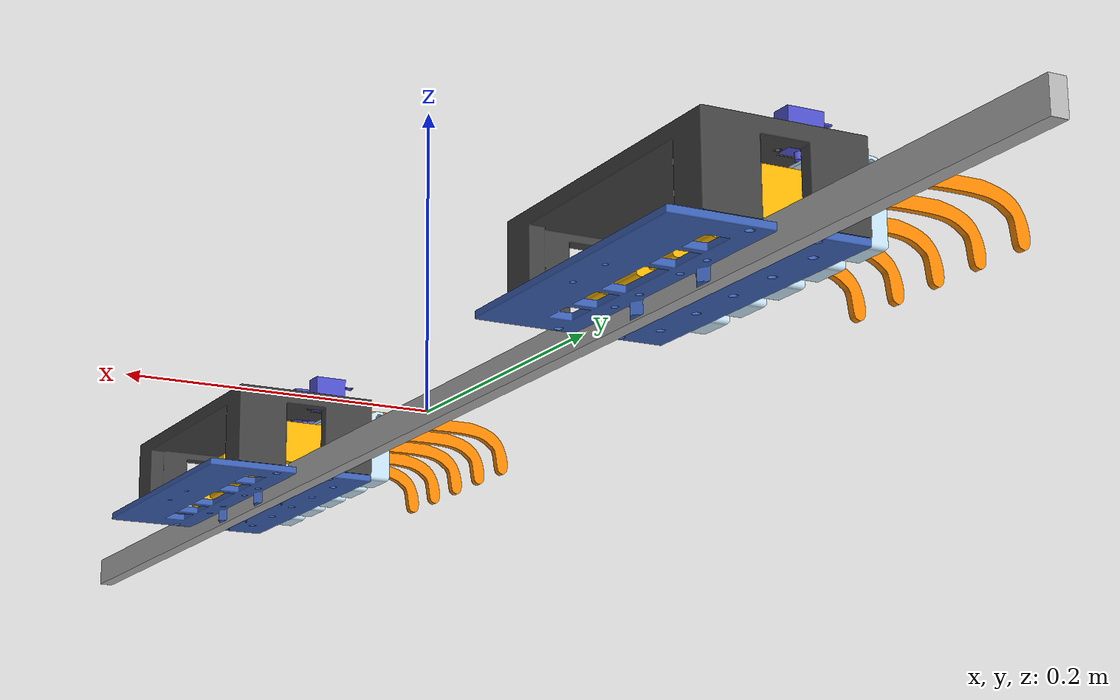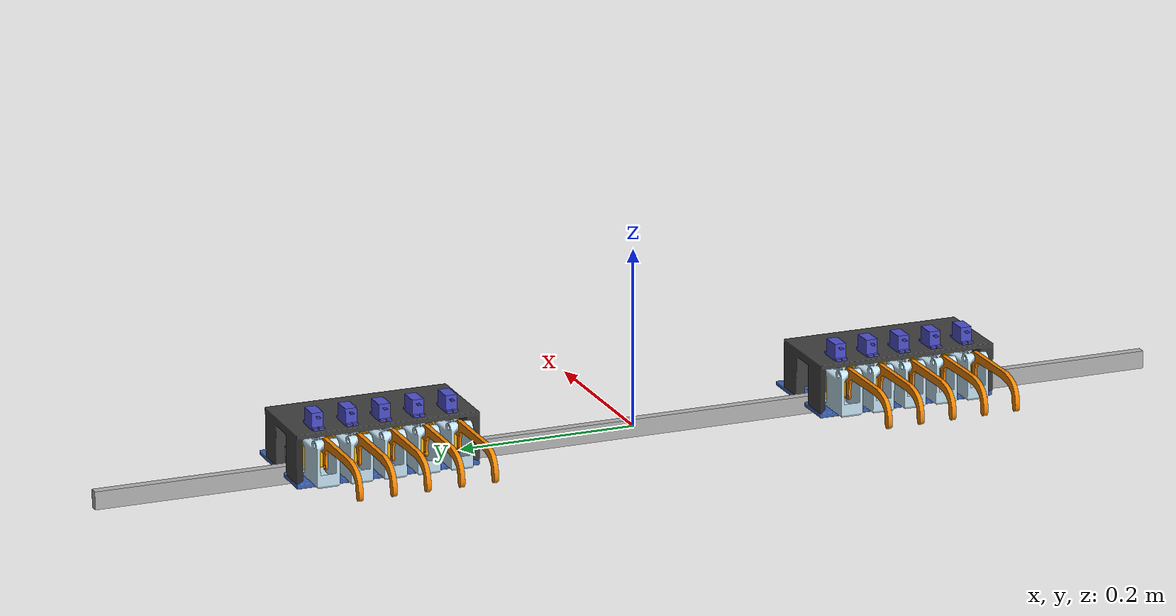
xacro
<?xml version="1.0"?>
<robot xmlns:xacro="http://www.ros.org/wiki/xacro" name="bothoven">

  <xacro:arg name="use_sim" default="false" />

  <xacro:include filename="$(find bothoven_description)/urdf/bothoven_core.xacro" />
  <xacro:include filename="$(find bothoven_description)/ros2_control/ros2_control.xacro" />

  <xacro:bothoven_ros2_control use_sim="$(arg use_sim)" />

  <xacro:if value="$(arg use_sim)">
    <gazebo>
      <plugin filename="libgz_ros2_control-system.so"
        name="gz_ros2_control::GazeboSimROS2ControlPlugin">
        <parameters>$(find bothoven_bringup)/config/controllers.yaml</parameters>
      </plugin>
    </gazebo>
  </xacro:if>
</robot>

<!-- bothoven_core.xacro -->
<robot name="bothoven"
  xmlns:xacro="http://www.ros.org/wiki/xacro">

  <xacro:include filename="$(find bothoven_description)/urdf/left_hand.xacro" />
  <xacro:include filename="$(find bothoven_description)/urdf/right_hand.xacro" />

  <xacro:property name="mesh_dir" value="file://$(find bothoven_description)/meshes" />

  <!-- dimensions -->
  <xacro:property name="rail_length" value="1.2192" />
  <xacro:property name="rail_width" value="0.05" />
  <xacro:property name="rail_height" value="0.02" />
  <xacro:property name="hand_width" value="0.4064" />

  <!-- hand origins relative to the rail center -->
  <xacro:property name="lh_start_point" value="-0.3" />
  <xacro:property name="rh_start_point" value="0.3" />

  <!-- servo joint limits -->
  <xacro:property name="servo_min" value="-0.087266462599716473902" />
  <xacro:property name="servo_max" value="0.087266462599716473902" />

  <!-- solenoid joint limits -->
  <xacro:property name="solenoid_min" value="0" />
  <xacro:property name="solenoid_max" value="0.52359877559829881566" />

  <!-- colours -->
  <material name="finger_mount_plate_material">
    <color rgba="0.231 0.380 0.706 1.0"/>
  </material>

  <material name="servo_mechanism_top_mount_material">
    <color rgba="0.250 0.250 0.250 1.0"/>
  </material>

  <material name="servo_material">
    <color rgba="0.302 0.314 0.8 1.0"/>
  </material>

  <material name="large_solenoid_material">
    <color rgba="0.980 0.714 0.004 1.0"/>
  </material>

  <material name="large_finger_solenoid_material">
    <color rgba="0.769 0.886 0.953 1.0"/>
  </material>

  <material name="finger_arm_large_material">
    <color rgba="0.973 0.529 0.004 1.0"/>
  </material>

  <material name="rail_material">
    <color rgba="0.7 0.7 0.7 1.0"/>
  </material>

  <!-- robot base -->
  <link name="base_link">
    <visual>
      <origin xyz="0 0 0" rpy="0 0 0" />
      <geometry>
        <box size="0.01 ${rail_length} ${rail_height}"/>
      </geometry>
      <material name="rail_material"/>
    </visual>
    <collision>
      <origin xyz="0 0 0" rpy="0 0 0" />
      <geometry>
        <box size="0.01 ${rail_length} ${rail_height}"/>
      </geometry>
    </collision>
    <inertial>
      <origin xyz="0 0 0" rpy="0 0 0"/>
      <mass value="10.0"/>
      <inertia ixx="0.1" ixy="0.0" ixz="0.0" iyy="0.1" iyz="0.0" izz="0.1"/>
    </inertial>
  </link>

  <!-- create hands -->
  <xacro:left_hand parent_link="base_link" rail_origin="${lh_start_point}" hand_width="${hand_width}" rail_length="${rail_length}" mesh_dir="${mesh_dir}"/>
  <xacro:right_hand parent_link="base_link" rail_origin="${rh_start_point}" hand_width="${hand_width}" rail_length="${rail_length}" mesh_dir="${mesh_dir}"/>
</robot>

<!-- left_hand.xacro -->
<robot xmlns:xacro="http://www.ros.org/wiki/xacro">
  <xacro:include filename="$(find bothoven_description)/urdf/finger.xacro" />

  <!-- left hand macro -->
  <xacro:macro name="left_hand" params="parent_link hand_width rail_origin rail_length mesh_dir">
    <xacro:property name="half_hand_width" value="${hand_width / 2}" />
    <xacro:property name="half_rail_length" value="${rail_length / 2}" />

    <joint name="lh_stepper" type="prismatic">
      <origin xyz="0 ${rail_origin} 0" rpy="0 0 ${pi}" />
      <parent link="${parent_link}" />
      <child link="lh_mount_plate" />
      <axis xyz="0 -1 0" />
      <!-- limit travel based on the rail length, accounting for hand width, relative to hand
      starting point -->
      <limit effort="100" velocity="1.0" lower="${-(half_rail_length + rail_origin)}"
        upper="${half_rail_length - rail_origin - half_hand_width}" />
    </joint>

    <!-- mount plate link -->
    <link name="lh_mount_plate">
      <visual>
        <origin xyz="0.002343270376630176427 3.5176405913106556511e-06 0.060000000000000004718"
          rpy="3.141592653589793116 -0 0" />
        <geometry>
          <mesh filename="${mesh_dir}/servo_mechanism_top_mount.stl" />
        </geometry>
        <material name="servo_mechanism_top_mount_material" />
      </visual>
      <visual>
        <origin xyz="0.0023499287608851338049 0.033803517640591265736 -0.021799999999999989525"
          rpy="1.9958838398273146999e-16 -6.5938365254384542654e-32 0" />
        <geometry>
          <mesh filename="${mesh_dir}/finger_mount_plate.stl" />
        </geometry>
        <material name="finger_mount_plate_material" />
      </visual>
      <visual>
        <origin xyz="0.045938244354197944885 -0.043846468705386110187 0.078200000000000005618"
          rpy="3.141592653589793116 -0 3.141592653589793116" />
        <geometry>
          <mesh filename="${mesh_dir}/servo.stl" />
        </geometry>
        <material name="servo_material" />
      </visual>
      <visual>
        <origin xyz="0.045938244354197944885 -0.0063464687053861098404 0.078200000000000005618"
          rpy="3.141592653589793116 -0 3.141592653589793116" />
        <geometry>
          <mesh filename="${mesh_dir}/servo.stl" />
        </geometry>
        <material name="servo_material" />
      </visual>
      <visual>
        <origin xyz="0.045938244354197951824 0.068653531294613892588 0.078200000000000005618"
          rpy="3.141592653589793116 -0 3.141592653589793116" />
        <geometry>
          <mesh filename="${mesh_dir}/servo.stl" />
        </geometry>
        <material name="servo_material" />
      </visual>
      <visual>
        <origin xyz="0.045938244354197944885 0.031153531294613880098 0.078200000000000005618"
          rpy="3.141592653589793116 -0 3.141592653589793116" />
        <geometry>
          <mesh filename="${mesh_dir}/servo.stl" />
        </geometry>
        <material name="servo_material" />
      </visual>
      <visual>
        <origin xyz="0.045938244354197944885 -0.081346468705386101861 0.078200000000000005618"
          rpy="3.141592653589793116 -0 3.141592653589793116" />
        <geometry>
          <mesh filename="${mesh_dir}/servo.stl" />
        </geometry>
        <material name="servo_material" />
      </visual>
      <inertial>
        <origin xyz="-0.0061380588689649677459 3.5176405912781151864e-06 0.0021762323764684364524"
          rpy="0 0 0" />
        <mass value="0.1425418914513462143" />
        <inertia ixx="0.00049040499142920430681" ixy="-4.2521531645534643096e-08"
          ixz="3.8022632172476792943e-07" iyy="0.00017998199019841947194"
          iyz="-9.7638013247875626937e-20" izz="0.00066917886277955795742" />
      </inertial>
    </link>

    <!-- create 5 fingers, where 1 is rightmost (thumb) and 5 is leftmost (pinky)-->
    <xacro:finger prefix="lh" parent_link="lh_mount_plate" finger_num="1"
      xyz_mount="0.035323819514354745652 -0.074996482359408825347 0.0050000000000000044409"
      rpy_mount="3.141592653589793116 -0 -1.570796326794896558" mesh_dir="${mesh_dir}" />

    <xacro:finger prefix="lh" parent_link="lh_mount_plate" finger_num="2"
      xyz_mount="0.035323819514354745652 -0.037496482359408805918 0.0050000000000000087777"
      rpy_mount="3.141592653589793116 -0 -1.570796326794896558" mesh_dir="${mesh_dir}" />

    <xacro:finger prefix="lh" parent_link="lh_mount_plate" finger_num="3"
      xyz_mount="0.035323819514354745652 3.5176405912273889243e-06 0.0050000000000000044409"
      rpy_mount="3.141592653589793116 -0 -1.570796326794896558" mesh_dir="${mesh_dir}" />

    <xacro:finger prefix="lh" parent_link="lh_mount_plate" finger_num="4"
      xyz_mount="0.035323819514354745652 0.037503517640591260696 0.0050000000000000044409"
      rpy_mount="3.141592653589793116 -0 -1.570796326794896558" mesh_dir="${mesh_dir}" />

    <xacro:finger prefix="lh" parent_link="lh_mount_plate" finger_num="5"
      xyz_mount="0.035323819514354717897 0.075003517640591349513 0.0050000000000000044409"
      rpy_mount="3.141592653589793116 -0 -1.570796326794896558" mesh_dir="${mesh_dir}" />
  </xacro:macro>
</robot>

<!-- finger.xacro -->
<robot xmlns:xacro="http://www.ros.org/wiki/xacro">
  <xacro:macro name="finger" params="prefix parent_link finger_num xyz_mount rpy_mount mesh_dir">
    <!-- finger-base link -->
    <link name="${prefix}_finger_base_${finger_num}">
      <visual>
        <origin xyz="0 0.027359073967098360841 -0.036000000000000004219" rpy="0 0 0" />
        <geometry>
          <mesh filename="${mesh_dir}/large_solenoid.stl"/>
        </geometry>
        <material name="large_solenoid_material"/>
      </visual>
      <visual>
        <origin xyz="1.3877787807814456755e-17 0.0074929958267665672245 0" rpy="3.141592653589793116 0 0" />
        <geometry>
          <mesh filename="${mesh_dir}/large_finger_solenoid.stl"/>
        </geometry>
        <material name="large_finger_solenoid_material"/>
      </visual>
      <inertial>
        <origin xyz="1.7276994838517517774e-08 0.023549138202856669672 -0.021326177734694938548" rpy="0 0 0"/>
        <mass value="0.55338609888308010198" />
        <inertia ixx="0.00016287530117454286681" ixy="4.5851672331546051194e-10" ixz="-9.7499035282877420938e-11" iyy="7.4613511550565022159e-05" iyz="-1.8189117257819838714e-07" izz="0.00014685197355774080646" />
      </inertial>
    </link>

    <!-- finger arm link -->
    <link name="${prefix}_finger_arm_${finger_num}">
      <visual>
        <origin xyz="0.063368257669539254651 -5.4787295081876186131e-05 -0.0050000000000000044409" rpy="0 0 0" />
        <geometry>
          <mesh filename="${mesh_dir}/finger_arm_large.stl"/>
        </geometry>
        <material name="finger_arm_large_material"/>
      </visual>
      <inertial>
        <origin xyz="0.051327194737765820254 -0.0021301611848530584148 -0.0025000197144712252642" rpy="0 0 0"/>
        <mass value="0.007972723597301041229" />
        <inertia ixx="5.9298578433162395778e-07" ixy="7.2370069362940225858e-07" ixz="-1.3145273744757145031e-11" iyy="1.1055709395186790427e-05" iyz="-3.8580036837076919589e-12" izz="1.1616703844229351174e-05" />
      </inertial>
    </link>

    <!-- servo joint -->
    <joint name="${prefix}_servo_${finger_num}" type="revolute">
      <origin xyz="${xyz_mount}" rpy="${rpy_mount}" />
      <parent link="${parent_link}" />
      <child link="${prefix}_finger_base_${finger_num}" />
      <axis xyz="0 0 1"/>
      <limit effort="1" velocity="20" lower="${servo_min}" upper="${servo_max}"/>
    </joint>

    <!-- solenoid joint -->
    <joint name="${prefix}_solenoid_${finger_num}" type="revolute">
      <origin xyz="0.003 -0.029897960988655505887 -0.046304046845760712947" rpy="-1.570796326794896558 0 -1.5707963267948970021" />
      <parent link="${prefix}_finger_base_${finger_num}" />
      <child link="${prefix}_finger_arm_${finger_num}" />
      <axis xyz="0 0 -1"/>
      <limit effort="1" velocity="20" lower="${solenoid_min}" upper="${solenoid_max}"/>
    </joint>
  </xacro:macro>
</robot>

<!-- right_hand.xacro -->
<robot xmlns:xacro="http://www.ros.org/wiki/xacro">
  <xacro:include filename="$(find bothoven_description)/urdf/finger.xacro" />

  <!-- right hand macro -->
  <xacro:macro name="right_hand" params="parent_link hand_width rail_origin rail_length mesh_dir">
    <xacro:property name="half_hand_width" value="${hand_width / 2}" />
    <xacro:property name="half_rail_length" value="${rail_length / 2}" />

    <joint name="rh_stepper" type="prismatic">
      <origin xyz="0 ${rail_origin} 0" rpy="0 0 ${pi}" />
      <parent link="${parent_link}" />
      <child link="rh_mount_plate" />
      <axis xyz="0 -1 0" />
      <!-- limit travel based on the rail length, accounting for hand width, relative to hand
      starting point -->
      <limit effort="100" velocity="1.0"
        lower="${-(half_rail_length + rail_origin) + half_hand_width}"
        upper="${half_rail_length - rail_origin}" />
    </joint>

    <!-- mount plate link -->
    <link name="rh_mount_plate">
      <visual>
        <origin xyz="0.002343270376630176427 3.5176405913106556511e-06 0.060000000000000004718"
          rpy="3.141592653589793116 -0 0" />
        <geometry>
          <mesh filename="${mesh_dir}/servo_mechanism_top_mount.stl" />
        </geometry>
        <material name="servo_mechanism_top_mount_material" />
      </visual>
      <visual>
        <origin xyz="0.0023499287608851338049 0.033803517640591265736 -0.021799999999999989525"
          rpy="1.9958838398273146999e-16 -6.5938365254384542654e-32 0" />
        <geometry>
          <mesh filename="${mesh_dir}/finger_mount_plate.stl" />
        </geometry>
        <material name="finger_mount_plate_material" />
      </visual>
      <visual>
        <origin xyz="0.045938244354197944885 -0.043846468705386110187 0.078200000000000005618"
          rpy="3.141592653589793116 -0 3.141592653589793116" />
        <geometry>
          <mesh filename="${mesh_dir}/servo.stl" />
        </geometry>
        <material name="servo_material" />
      </visual>
      <visual>
        <origin xyz="0.045938244354197944885 -0.0063464687053861098404 0.078200000000000005618"
          rpy="3.141592653589793116 -0 3.141592653589793116" />
        <geometry>
          <mesh filename="${mesh_dir}/servo.stl" />
        </geometry>
        <material name="servo_material" />
      </visual>
      <visual>
        <origin xyz="0.045938244354197951824 0.068653531294613892588 0.078200000000000005618"
          rpy="3.141592653589793116 -0 3.141592653589793116" />
        <geometry>
          <mesh filename="${mesh_dir}/servo.stl" />
        </geometry>
        <material name="servo_material" />
      </visual>
      <visual>
        <origin xyz="0.045938244354197944885 0.031153531294613880098 0.078200000000000005618"
          rpy="3.141592653589793116 -0 3.141592653589793116" />
        <geometry>
          <mesh filename="${mesh_dir}/servo.stl" />
        </geometry>
        <material name="servo_material" />
      </visual>
      <visual>
        <origin xyz="0.045938244354197944885 -0.081346468705386101861 0.078200000000000005618"
          rpy="3.141592653589793116 -0 3.141592653589793116" />
        <geometry>
          <mesh filename="${mesh_dir}/servo.stl" />
        </geometry>
        <material name="servo_material" />
      </visual>
      <inertial>
        <origin xyz="-0.0061380588689649677459 3.5176405912781151864e-06 0.0021762323764684364524"
          rpy="0 0 0" />
        <mass value="0.1425418914513462143" />
        <inertia ixx="0.00049040499142920430681" ixy="-4.2521531645534643096e-08"
          ixz="3.8022632172476792943e-07" iyy="0.00017998199019841947194"
          iyz="-9.7638013247875626937e-20" izz="0.00066917886277955795742" />
      </inertial>
    </link>

    <!-- create 5 fingers, where 1 is leftmost (thumb) and 5 is rightmost (pinky)-->
    <xacro:finger prefix="rh" parent_link="rh_mount_plate" finger_num="1"
      xyz_mount="0.035323819514354752591 0.075003517640591335636 0.0050000000000000044409"
      rpy_mount="3.141592653589793116 -0 -1.570796326794896558" mesh_dir="${mesh_dir}" />

    <xacro:finger prefix="rh" parent_link="rh_mount_plate" finger_num="2"
      xyz_mount="0.035323819514354745652 0.037503517640591260696 0.0050000000000000044409"
      rpy_mount="3.141592653589793116 -0 -1.570796326794896558" mesh_dir="${mesh_dir}" />

    <xacro:finger prefix="rh" parent_link="rh_mount_plate" finger_num="3"
      xyz_mount="0.035323819514354745652 3.5176405912273889243e-06 0.0050000000000000044409"
      rpy_mount="3.141592653589793116 -0 -1.570796326794896558" mesh_dir="${mesh_dir}" />

    <xacro:finger prefix="rh" parent_link="rh_mount_plate" finger_num="4"
      xyz_mount="0.035323819514354745652 -0.037496482359408805918 0.0050000000000000044409"
      rpy_mount="3.141592653589793116 -0 -1.570796326794896558" mesh_dir="${mesh_dir}" />

    <xacro:finger prefix="rh" parent_link="rh_mount_plate" finger_num="5"
      xyz_mount="0.035323819514354745652 -0.074996482359408839224 0.0050000000000000044409"
      rpy_mount="3.141592653589793116 -0 -1.570796326794896558" mesh_dir="${mesh_dir}" />
  </xacro:macro>
</robot>
